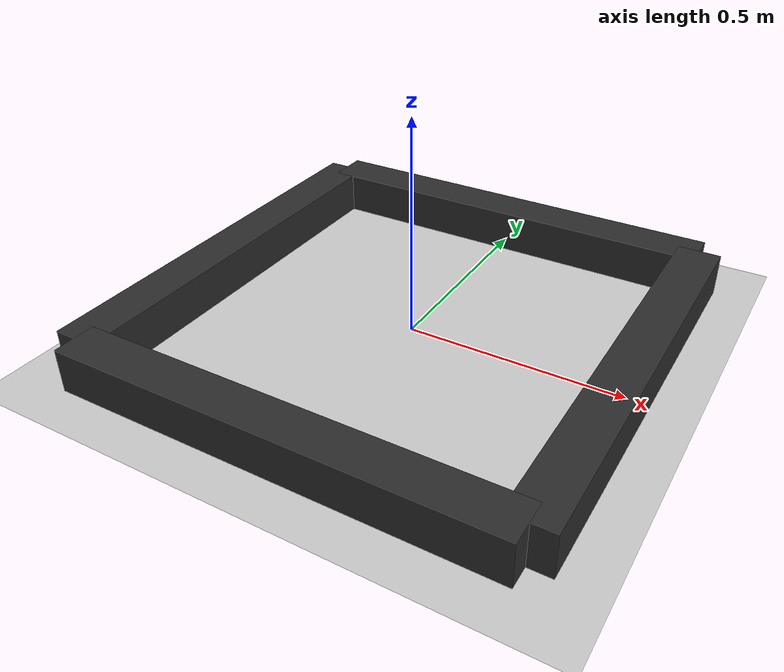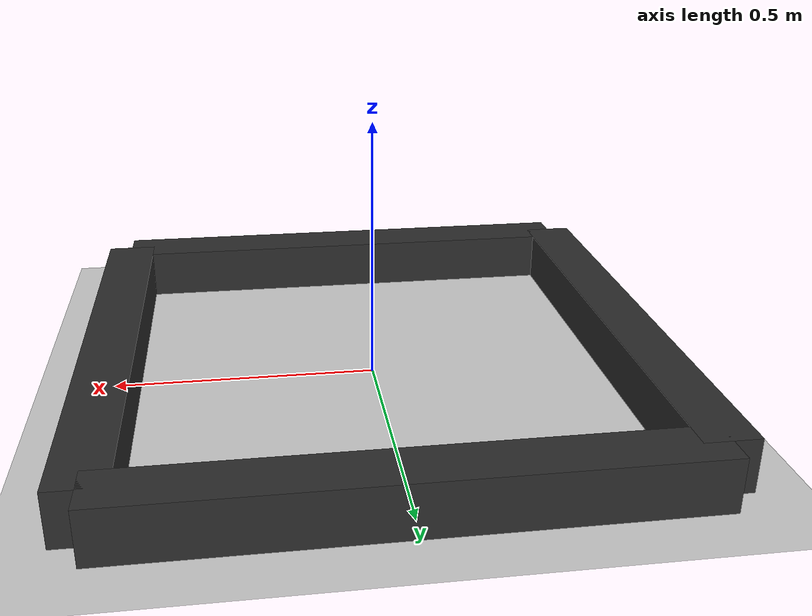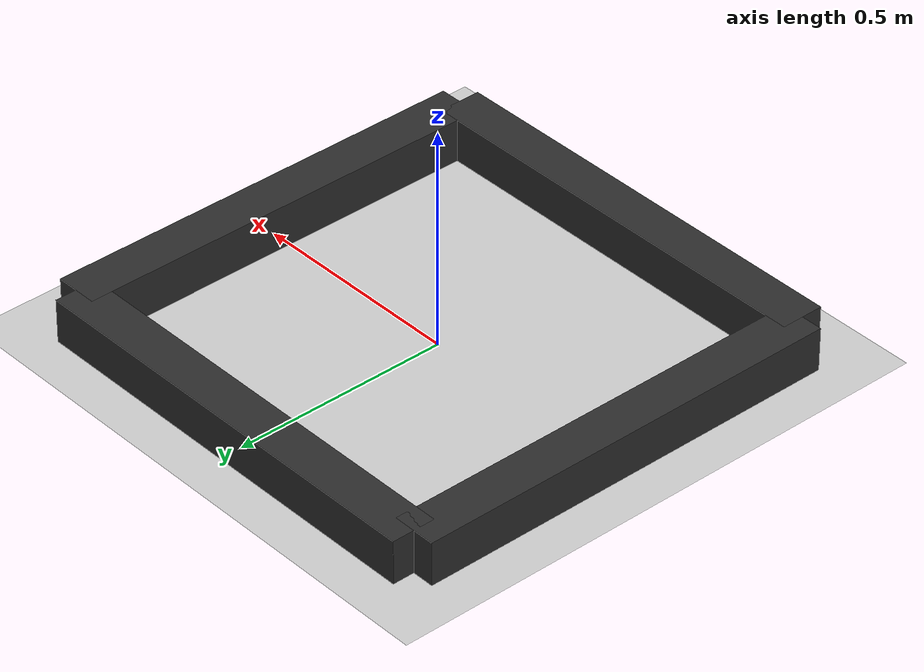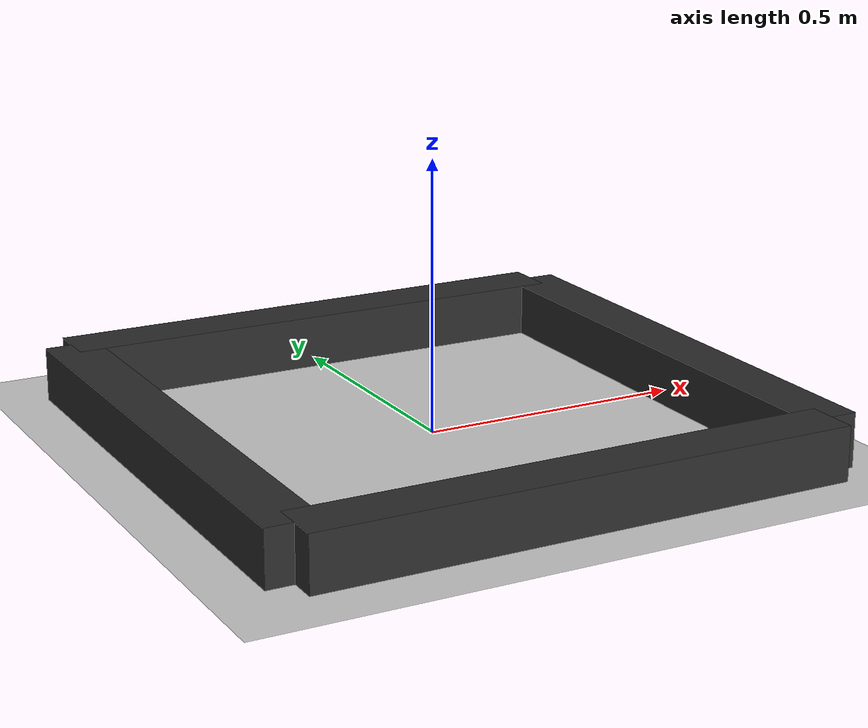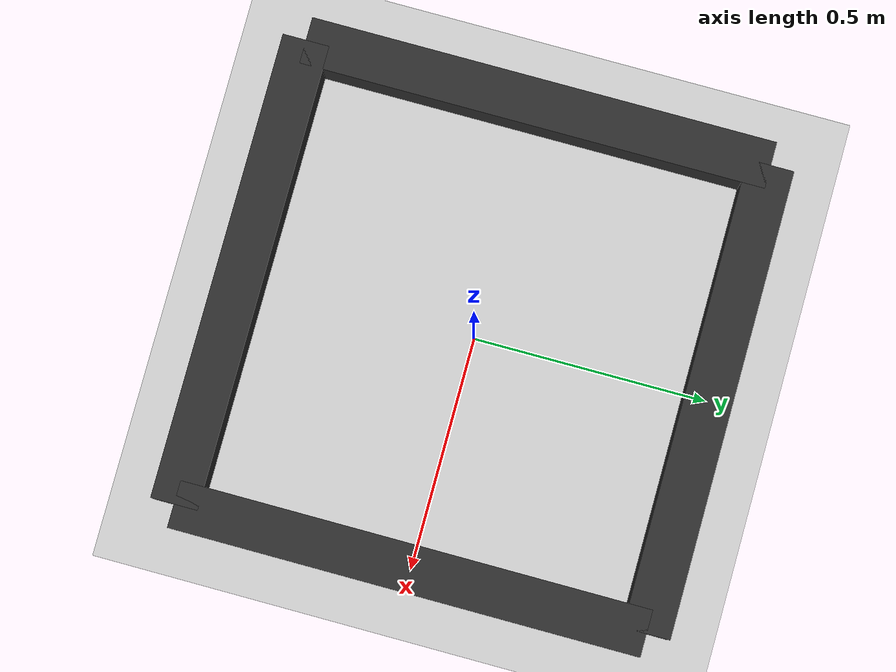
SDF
<?xml version="1.0" ?>
<sdf version="1.7">
  <world name="4bar_link">
    <plugin filename="gz-sim-physics-system"
      name="gz::sim::systems::Physics">
    </plugin>
    <plugin filename="gz-sim-user-commands-system"
      name="gz::sim::systems::UserCommands">
    </plugin>
    <plugin filename="gz-sim-scene-broadcaster-system"
      name="gz::sim::systems::SceneBroadcaster">
    </plugin>
    <plugin filename="gz-sim-imu-system"
      name="gz::sim::systems::Imu">
    </plugin>

    <scene>
      <ambient>1.0 1.0 1.0</ambient>
      <background>0.8 0.8 0.8</background>
      <sky></sky>
    </scene>

    <light type="directional" name="sun">
      <cast_shadows>true</cast_shadows>
      <pose>0 0 10 0 0 0</pose>
      <diffuse>0.8 0.8 0.8 1</diffuse>
      <specular>0.8 0.8 0.8 1</specular>
      <attenuation>
        <range>1000</range>
        <constant>0.9</constant>
        <linear>0.01</linear>
        <quadratic>0.001</quadratic>
      </attenuation>
      <direction>-0.5 0.1 -0.9</direction>
    </light>

    <include>
      <uri>https://fuel.gazebosim.org/1.0/OpenRobotics/models/Ground Plane</uri>
    </include>

    <model name="4bar_link">
      <pose>0 0 0.05 0 0 0</pose>
      <link name="link1">
        <pose>0 0.5 0 0 0 0</pose>
        <inertial>
          <mass>1.0</mass>
          <inertia>
            <ixx>0.001666667</ixx>
            <ixy>0</ixy>
            <ixz>0</ixz>
            <iyy>0.084166667</iyy>
            <iyz>0</iyz>
            <izz>0.084166667</izz>
          </inertia>
        </inertial>
        <collision name="collision">
          <geometry>
            <box>
              <size>1 0.1 0.1</size>
            </box>
          </geometry>
        </collision>
        <visual name="visual">
          <geometry>
            <box>
              <size>1 0.1 0.1</size>
            </box>
          </geometry>
          <material>
            <ambient>0.175 0.175 0.175 1</ambient>
            <diffuse>0.175 0.175 0.175 1</diffuse>
            <specular>0.175 0.175 0.175 1</specular>
          </material>
        </visual>
      </link>
      <link name="link2">
        <pose>0.5 0 0 0 0 -1.5708</pose>
        <inertial>
          <mass>1.0</mass>
          <inertia>
            <ixx>0.001666667</ixx>
            <ixy>0</ixy>
            <ixz>0</ixz>
            <iyy>0.084166667</iyy>
            <iyz>0</iyz>
            <izz>0.084166667</izz>
          </inertia>
        </inertial>
        <collision name="collision">
          <geometry>
            <box>
              <size>1 0.1 0.1</size>
            </box>
          </geometry>
        </collision>
        <visual name="visual">
          <geometry>
            <box>
              <size>1 0.1 0.1</size>
            </box>
          </geometry>
          <material>
            <ambient>0.175 0.175 0.175 1</ambient>
            <diffuse>0.175 0.175 0.175 1</diffuse>
            <specular>0.175 0.175 0.175 1</specular>
          </material>
        </visual>
      </link>
      <joint name="link12_joint" type="revolute">
        <pose>-0.5 0 0 0 0 0</pose>
        <parent>link1</parent>
        <child>link2</child>
        <axis>
          <xyz>0 0 1</xyz>
          <limit>
            <lower>-1.5708</lower>
            <upper>1.5708</upper>
          </limit>
          <dynamics>
            <damping>0.1</damping>
          </dynamics>
        </axis>
      </joint>

      <link name="link3">
        <pose>0 -0.5 0 0 0 0</pose>
        <inertial>
          <mass>1.0</mass>
          <inertia>
            <ixx>0.001666667</ixx>
            <ixy>0</ixy>
            <ixz>0</ixz>
            <iyy>0.084166667</iyy>
            <iyz>0</iyz>
            <izz>0.084166667</izz>
          </inertia>
        </inertial>
        <collision name="collision">
          <geometry>
            <box>
              <size>1 0.1 0.1</size>
            </box>
          </geometry>
        </collision>
        <visual name="visual">
          <geometry>
            <box>
              <size>1 0.1 0.1</size>
            </box>
          </geometry>
          <material>
            <ambient>0.175 0.175 0.175 1</ambient>
            <diffuse>0.175 0.175 0.175 1</diffuse>
            <specular>0.175 0.175 0.175 1</specular>
          </material>
        </visual>
      </link>
      <joint name="link23_joint" type="revolute">
        <pose>0.5 0 0 0 0 0</pose>
        <parent>link2</parent>
        <child>link3</child>
        <axis>
          <xyz>0 0 1</xyz>
          <limit>
            <lower>-1.5708</lower>
            <upper>1.5708</upper>
          </limit>
          <dynamics>
            <damping>0.1</damping>
          </dynamics>
        </axis>
      </joint>

      <link name="link4">
        <pose>-0.5 0 0 0 0 1.5708</pose>
        <inertial>
          <mass>1.0</mass>
          <inertia>
            <ixx>0.001666667</ixx>
            <ixy>0</ixy>
            <ixz>0</ixz>
            <iyy>0.084166667</iyy>
            <iyz>0</iyz>
            <izz>0.084166667</izz>
          </inertia>
        </inertial>
        <collision name="collision">
          <geometry>
            <box>
              <size>1 0.1 0.1</size>
            </box>
          </geometry>
        </collision>
        <visual name="visual">
          <geometry>
            <box>
              <size>1 0.1 0.1</size>
            </box>
          </geometry>
          <material>
            <ambient>0.175 0.175 0.175 1</ambient>
            <diffuse>0.175 0.175 0.175 1</diffuse>
            <specular>0.175 0.175 0.175 1</specular>
          </material>
        </visual>
      </link>
      <joint name="link34_joint" type="revolute">
        <pose>-0.5 0 0 0 0 0</pose>
        <parent>link3</parent>
        <child>link4</child>
        <axis>
          <xyz>0 0 1</xyz>
          <limit>
            <lower>-1.5708</lower>
            <upper>1.5708</upper>
          </limit>
          <dynamics>
            <damping>0.1</damping>
          </dynamics>
        </axis>
      </joint>

      <joint name="link41_joint" type="revolute">
        <pose>-0.5 0 0 0 0 0</pose>
        <parent>link4</parent>
        <child>link1</child>
        <axis>
          <xyz>0 0 1</xyz>
          <limit>
            <lower>-1.5708</lower>
            <upper>1.5708</upper>
          </limit>
          <dynamics>
            <damping>0.1</damping>
          </dynamics>
        </axis>
      </joint>

    </model>

  </world>
</sdf>
